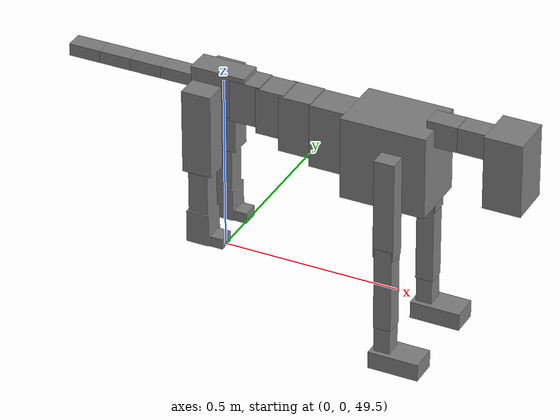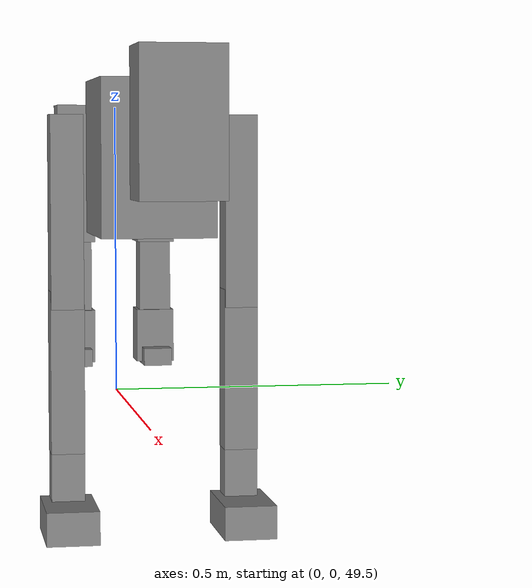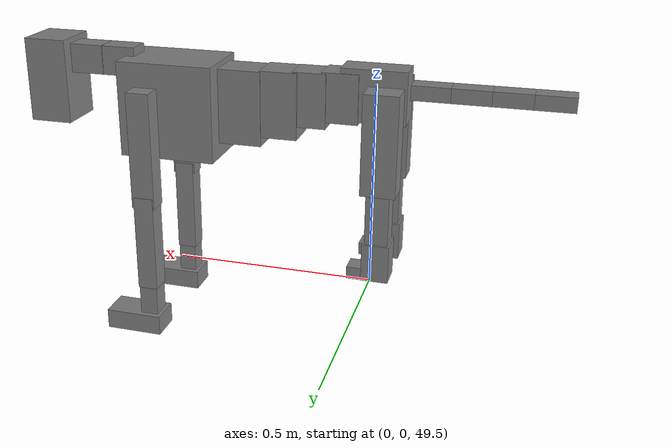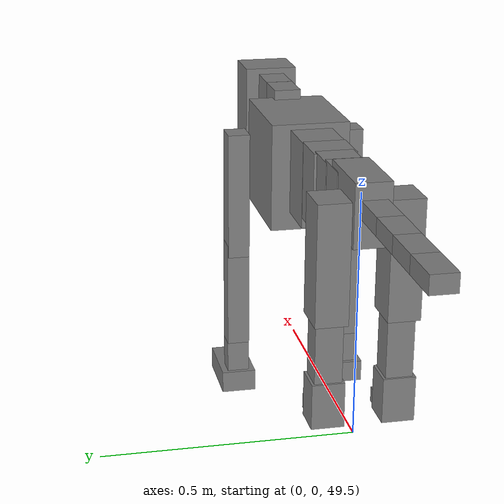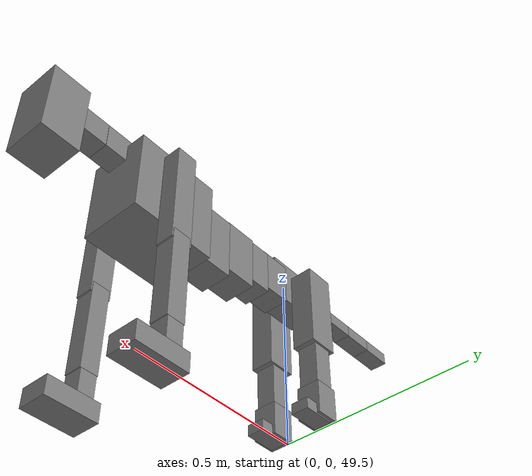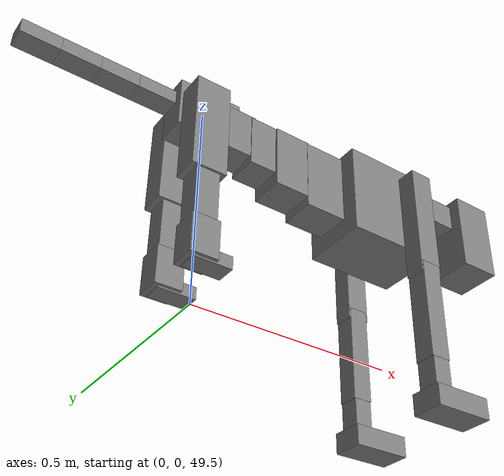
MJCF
<mujoco model="dog">

    <default>
        <joint armature="0.02" stiffness="1" damping="0.2" limited="true"/>
        <geom condim="3" friction="1 0.05 0.05" margin="0.01"/>
        <motor ctrllimited="true" ctrlrange="-1.0 1.0" forcelimited="true" gear="50"/>
    </default>

    <compiler inertiafromgeom="true" angle="radian"/>

    <option timestep="0.016" iterations="50" tolerance="1e-10" solver="Newton" jacobian="dense" cone="pyramidal"/>

    <size nconmax="20000" njmax="60000" nstack="5000000"/>
    <visual>
        <map force="0.1" zfar="30"/>
        <rgba haze="0.15 0.25 0.35 1"/>
        <quality shadowsize="2048"/>
        <global offwidth="800" offheight="800"/>
    </visual>

    <asset>
        <texture type="skybox" builtin="gradient" rgb1="0.3 0.5 0.7" rgb2="0 0 0" width="512" height="512"/>
        <texture name="texplane" type="2d" builtin="checker" rgb1=".2 .3 .4" rgb2=".1 0.15 0.2" width="512" height="512"
                 mark="cross" markrgb=".8 .8 .8"/>
        <texture name="texgeom" type="cube" builtin="flat" mark="cross" width="127" height="1278" rgb1="0.8 0.6 0.4"
                 rgb2="0.8 0.6 0.4" markrgb="1 1 1" random="0.01"/>

        <material name="matplane" reflectance="0.3" texture="texplane" texrepeat="1 1" texuniform="true"/>
        <material name="matgeom" texture="texgeom" texuniform="true" rgba="0.8 0.6 .4 1"/>
    </asset>

    <worldbody>
        <geom name="floor" pos="0 0 0" size="0 0 .25" type="plane" material="matplane" condim="3"/>

        <light directional="false" diffuse=".2 .2 .2" specular="0 0 0" pos="0 0 5" dir="0 0 -1" castshadow="false"/>
        <light mode="targetbodycom" target="torso" directional="false" diffuse=".8 .8 .8" specular="0.3 0.3 0.3"
               pos="0 0 4.0" dir="0 0 -1"/>

        <body name="root" pos="0 0 50">
            <freejoint name="root_1"/>
            <geom type="box" pos="0 0 -0.02" size="0.0774  0.0358  0.063" density="2030"/>

            <body name="spine1" pos="0.054 0 0">
                <joint name="spine1_y" axis="0 1 0" range="0 0.7" limited="true"/>
                <geom type="box" pos="0.02375 0 -0.03" size="0.04375  0.0375  0.05985" density="2030"/>

                <body name="spine2" pos="0.0612 0 0">
                    <joint name="spine2_y" axis="0 1 0" range="-0.15 0.15" limited="true"/>
                    <geom type="box" pos="0.03555  0  -0.04" size="0.04055  0.039  0.06615" density="2030"/>

                    <body name="spine3" pos="0.0730 0 0">
                        <joint name="spine3_y" axis="0 1 0" range="-0.15 0.15" limited="true"/>
                        <geom type="box" pos="0.03555  0  -0.057" size="0.04555  0.0445  0.081" density="2030"/>

                        <body name="spine4" pos="0.0780 0 0">
                            <joint name="spine4_y" axis="0 1 0" range="-0.15 0.15" limited="true"/>
                            <geom type="box" pos="0.05265  0  -0.07" size="0.05265  0.045  0.09135" density="2030"/>

                            <body name="torso" pos="0.1082 0 0">
                                <joint name="torso_y" axis="0 1 0" range="-0.15 0.15" limited="true"/>
                                <geom type="box" pos="0.11925  0  -0.085" size="0.11925  0.085  0.11745"
                                      density="2030"/>

                                <body name="neck1" pos="0.2160  0   0.0180">
                                    <joint name="neck1_y" axis="0 1 0" range="-1.2  -1" limited="true"/>
                                    <geom type="box" pos="0.0423  0  0" size="0.0423  0.03  0.036" density="2325"/>

                                    <body name="neck2" pos="0.0853  0  0">
                                        <joint name="neck2_y" axis="0 1 0" range="0.1  0" limited="true"/>
                                        <geom type="box" pos="0.0423  0  0" size="0.0423  0.03  0.036" density="2325"/>

                                        <body name="head" pos="0.0853  0  0">
                                            <joint name="head_y" axis="0 1 0" range="-0.3  -0.2" limited="true"/>
                                            <geom type="box" pos="0.0531  0  -0.055" size="0.0531  0.06  0.1044"
                                                  density="4030"/>

                                        </body>
                                    </body>
                                </body>

                                <body name="front_shoulder" pos="0.156  0   -0.0480">
                                    <joint name="front_shoulder_y" axis="0 1 0" range="-1 1.5" limited="true"/>
                                    <geom type="box" pos="0 0.13 -0.1171" size="0.0285  0.0243  0.1438" density="1158"/>
                                    <geom type="box" pos="0 -0.13 -0.1171" size="0.0285  0.0243  0.1438"
                                          density="1158"/>

                                    <body name="front_elbow" pos="0  0  -0.2343">
                                        <joint name="front_elbow_y" axis="0 1 0" range="-2 0" limited="true"/>
                                        <geom type="box" pos="0 0.13 -0.1208" size="0.0245  0.0250  0.1208"
                                              density="1081"/>
                                        <geom type="box" pos="0 -0.13 -0.1208" size="0.0245  0.0250  0.1208"
                                              density="1081"/>

                                        <body name="front_wrist" pos="0  0  -0.2416">
                                            <joint name="front_wrist_y" axis="0 1 0" range="-0.2 0" limited="true"/>
                                            <geom type="box" pos="0 0.13 -0.0430" size="0.0222  0.0247  0.0562"
                                                  density="1664"/>
                                            <geom type="box" pos="0 -0.13 -0.0430" size="0.0222  0.0247  0.0562"
                                                  density="1664"/>

                                            <body name="front_finger_end" pos="0  0  -0.0860">
                                                <joint name="front_finger_y" axis="0 1 0" range="-0.4 1"
                                                       limited="true"/>
                                                <geom type="box" pos="0.0387  0.13  -0.0098"
                                                      size="0.0709  0.0387  0.0248" density="1515"/>
                                                <geom type="box" pos="0.0387  -0.13  -0.0098"
                                                      size="0.0709  0.0387  0.0248" density="1515"/>

                                            </body>

                                        </body>
                                    </body>
                                </body>

                            </body>
                        </body>
                    </body>
                </body>
            </body>

            <body name="back_hip" pos="-0.03 0 -0.018">
                <joint name="back_hip_y" axis="0 1 0" range="-1.5 0.3" limited="true"/>
                <geom type="box" pos="0 0.07 -0.0978" size="0.0413  0.0324  0.1206" density="1154"/>
                <geom type="box" pos="0 -0.07 -0.0978" size="0.0413  0.0324  0.1206" density="1154"/>

                <body name="back_knee" pos="0  0  -0.1956">
                    <joint name="back_knee_y" axis="0 1 0" range="0 2.8" limited="true"/>
                    <geom type="box" pos="0 0.07 -0.0777" size="0.0275  0.0271  0.0933" density="1227"/>
                    <geom type="box" pos="0 -0.07 -0.0777" size="0.0275  0.0271  0.0933" density="1227"/>

                    <body name="back_ankle" pos="0  0  -0.1554">
                        <joint name="back_ankle_y" axis="0 1 0" range="-2.2 0" limited="true"/>
                        <geom type="box" pos="0 0.07 -0.0349" size="0.0324  0.0324  0.0462" density="1284"/>
                        <geom type="box" pos="0 -0.07 -0.0349" size="0.0324  0.0324  0.0462" density="1284"/>

                        <body name="back_toe_end" pos="0  0  -0.0698">
                            <joint name="back_toe_y" axis="0 1 0" range="-0.4 1" limited="true"/>
                            <geom type="box" pos="0.0242  0.07  -0.0001" size="0.0444  0.0242  0.0151" density="1515"/>
                            <geom type="box" pos="0.0242  -0.07  -0.0001" size="0.0444  0.0242  0.0151" density="1515"/>

                        </body>
                    </body>
                </body>
            </body>

            <body name="tail1" pos="-0.074 0 -0.006">
                <joint name="tail1_y" axis="0 1 0" range="-0.2 0.2" limited="true"/>
                <geom type="box" pos="-0.0536  0  0" size="0.045  0.025  0.0175" density="1587"/>

                <body name="tail2" pos="-0.09 0 0">
                    <joint name="tail2_y" axis="0 1 0" range="-0.2 0.2" limited="true"/>
                    <geom type="box" pos="-0.0536  0  0" size="0.045  0.025  0.0175" density="1587"/>

                    <body name="tail3" pos="-0.09 0 0">
                        <joint name="tail3_y" axis="0 1 0" range="-0.2 0.2" limited="true"/>
                        <geom type="box" pos="-0.0536  0  0" size="0.045  0.025  0.0175" density="1587"/>

                        <body name="tail4" pos="-0.09 0 0">
                            <joint name="tail4_y" axis="0 1 0" range="-0.2 0.2" limited="true"/>
                            <geom type="box" pos="-0.0536  0  0" size="0.045  0.025  0.0175" density="1587"/>

                        </body>
                    </body>
                </body>
            </body>
        </body>
    </worldbody>

    <actuator>
        <motor joint="spine1_y" forcerange="-150 150     "/>
        <motor joint="spine2_y" forcerange="-150 150     "/>
        <motor joint="spine3_y" forcerange="-150 150     "/>
        <motor joint="spine4_y" forcerange="-150 150     "/>
        <motor joint="torso_y" forcerange="-150 150     "/>
        <motor joint="neck1_y" forcerange="-100 100       "/>
        <motor joint="neck2_y" forcerange="-100 100       "/>
        <motor joint="head_y" forcerange="-150 150       "/>
        <motor joint="front_shoulder_y" forcerange="-151.33 110.81"/>
        <motor joint="front_elbow_y" forcerange="-142.94 138.90"/>
        <motor joint="front_wrist_y" forcerange="-97.05 100.33"/>
        <motor joint="front_finger_y" forcerange="-86.14 80.21"/>
        <motor joint="back_hip_y" forcerange="-291.92 339.51"/>
        <motor joint="back_knee_y" forcerange="-356.91 236.72"/>
        <motor joint="back_angle_y" forcerange="-212.17 206.61"/>
        <motor joint="back_toe_y" forcerange="-92.27 21.62"/>
        <motor joint="tail1_y" forcerange="-50 50     "/>
        <motor joint="tail2_y" forcerange="-50 50     "/>
        <motor joint="tail3_y" forcerange="-50 50     "/>
        <motor joint="tail4_y" forcerange="-50 50     "/>
    </actuator>
</mujoco>
